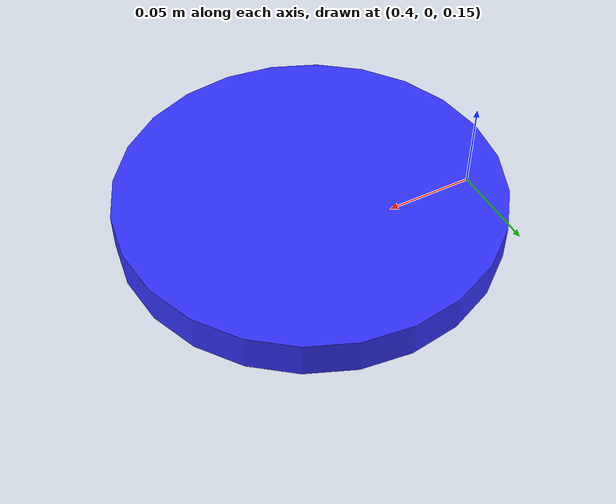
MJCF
<mujoco model="target_zone">
    <compiler angle="radian"/>

    <asset>
        <material name="target_zone" rgba="0.2 0.2 1 1"/>
    </asset>

    <worldbody>
        <body name="target_zone" pos="0.5 0 0.18">
            <!-- Agregar un freejoint para hacer que la zona objetivo sea un objeto libre -->
            <joint name="target_zone_joint" type="free"/>

            <!-- Zone de destino (azul) -->
            <geom name="target_zone" type="cylinder" size="0.1 0.01" material="target_zone"/>
        </body>
    </worldbody>
</mujoco>
